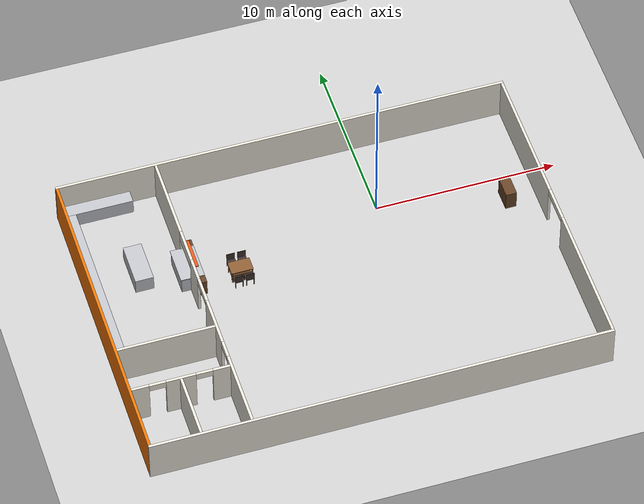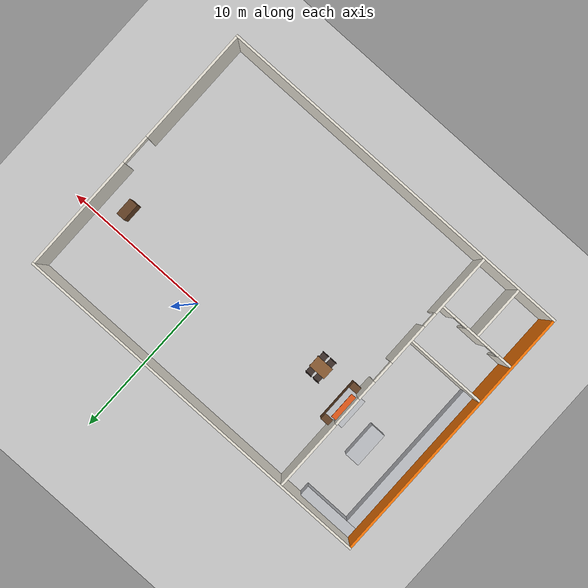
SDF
<sdf version="1.6">
 <world name="restaurant">
  <model name="ground_plane">
   <static>1</static>
   <link name="link">
    <collision name="collision">
     <geometry><plane><normal>0 0 1</normal><size>100 100</size></plane></geometry>
     <surface><friction><ode><mu>100</mu><mu2>50</mu2></ode></friction></surface>
    </collision>
    <visual name="visual">
     <cast_shadows>0</cast_shadows>
     <geometry><plane><normal>0 0 1</normal><size>100 100</size></plane></geometry>
     <material>
      <script><uri>file://media/materials/scripts/gazebo.material</uri><name>Gazebo/Grey</name></script>
     </material>
    </visual>
   </link>
  </model>
  <model name="restaurant">
   <static>true</static>
   <pose>-3.936 -4.4909 0 0 0 0</pose>
   <link name="Wall_8">
    <collision name="Wall_8_n_collision">
     <pose>0.0000 8.9250 1.2500 0 0 0</pose>
     <geometry><box><size>25.0000 0.1500 2.5000</size></box></geometry>
    </collision>
    <visual name="Wall_8_n_visual">
     <pose>0.0000 8.9250 1.2500 0 0 0</pose>
     <geometry><box><size>25.0000 0.1500 2.5000</size></box></geometry>
     <material>
      <ambient>0.93 0.91 0.86 1</ambient>
      <diffuse>0.93 0.91 0.86 1</diffuse>
      <specular>0.05 0.05 0.05 1</specular>
     </material>
    </visual>
   </link>
   <link name="Wall_12">
    <collision name="Wall_12_s_collision">
     <pose>0.0000 -8.9250 1.2500 0 0 0</pose>
     <geometry><box><size>25.0000 0.1500 2.5000</size></box></geometry>
    </collision>
    <visual name="Wall_12_s_visual">
     <pose>0.0000 -8.9250 1.2500 0 0 0</pose>
     <geometry><box><size>25.0000 0.1500 2.5000</size></box></geometry>
     <material>
      <ambient>0.93 0.91 0.86 1</ambient>
      <diffuse>0.93 0.91 0.86 1</diffuse>
      <specular>0.05 0.05 0.05 1</specular>
     </material>
    </visual>
   </link>
   <link name="Wall_10">
    <collision name="Wall_10_w_collision">
     <pose>-12.4250 0.0000 1.2500 0 0 0</pose>
     <geometry><box><size>0.1500 17.7000 2.5000</size></box></geometry>
    </collision>
    <visual name="Wall_10_w_visual">
     <pose>-12.4250 0.0000 1.2500 0 0 0</pose>
     <geometry><box><size>0.1500 17.7000 2.5000</size></box></geometry>
     <material>
      <ambient>0.996078 0.47451 0.0196078 1</ambient>
      <diffuse>0.996078 0.47451 0.0196078 1</diffuse>
      <specular>0.05 0.05 0.05 1</specular>
     </material>
    </visual>
   </link>
   <link name="Wall_14">
    <collision name="Wall_14_a_collision">
     <pose>12.4250 -4.9250 1.2500 0 0 0</pose>
     <geometry><box><size>0.1500 7.8500 2.5000</size></box></geometry>
    </collision>
    <visual name="Wall_14_a_visual">
     <pose>12.4250 -4.9250 1.2500 0 0 0</pose>
     <geometry><box><size>0.1500 7.8500 2.5000</size></box></geometry>
     <material>
      <ambient>0.93 0.91 0.86 1</ambient>
      <diffuse>0.93 0.91 0.86 1</diffuse>
      <specular>0.05 0.05 0.05 1</specular>
     </material>
    </visual>
    <collision name="Wall_14_b_collision">
     <pose>12.4250 4.9250 1.2500 0 0 0</pose>
     <geometry><box><size>0.1500 7.8500 2.5000</size></box></geometry>
    </collision>
    <visual name="Wall_14_b_visual">
     <pose>12.4250 4.9250 1.2500 0 0 0</pose>
     <geometry><box><size>0.1500 7.8500 2.5000</size></box></geometry>
     <material>
      <ambient>0.93 0.91 0.86 1</ambient>
      <diffuse>0.93 0.91 0.86 1</diffuse>
      <specular>0.05 0.05 0.05 1</specular>
     </material>
    </visual>
    <collision name="Wall_14_lintel_collision">
     <pose>12.4250 0.0000 2.3000 0 0 0</pose>
     <geometry><box><size>0.1500 2.0000 0.4000</size></box></geometry>
    </collision>
    <visual name="Wall_14_lintel_visual">
     <pose>12.4250 0.0000 2.3000 0 0 0</pose>
     <geometry><box><size>0.1500 2.0000 0.4000</size></box></geometry>
     <material>
      <ambient>0.93 0.91 0.86 1</ambient>
      <diffuse>0.93 0.91 0.86 1</diffuse>
      <specular>0.05 0.05 0.05 1</specular>
     </material>
    </visual>
   </link>
   <link name="Partition_Kitchen">
    <collision name="Partition_Kitchen_a_collision">
     <pose>-7.0000 -6.7250 1.2500 0 0 0</pose>
     <geometry><box><size>0.1500 4.2500 2.5000</size></box></geometry>
    </collision>
    <visual name="Partition_Kitchen_a_visual">
     <pose>-7.0000 -6.7250 1.2500 0 0 0</pose>
     <geometry><box><size>0.1500 4.2500 2.5000</size></box></geometry>
     <material>
      <ambient>0.93 0.91 0.86 1</ambient>
      <diffuse>0.93 0.91 0.86 1</diffuse>
      <specular>0.05 0.05 0.05 1</specular>
     </material>
    </visual>
    <collision name="Partition_Kitchen_b_collision">
     <pose>-7.0000 -2.1750 1.2500 0 0 0</pose>
     <geometry><box><size>0.1500 2.8500 2.5000</size></box></geometry>
    </collision>
    <visual name="Partition_Kitchen_b_visual">
     <pose>-7.0000 -2.1750 1.2500 0 0 0</pose>
     <geometry><box><size>0.1500 2.8500 2.5000</size></box></geometry>
     <material>
      <ambient>0.93 0.91 0.86 1</ambient>
      <diffuse>0.93 0.91 0.86 1</diffuse>
      <specular>0.05 0.05 0.05 1</specular>
     </material>
    </visual>
    <collision name="Partition_Kitchen_c1_collision">
     <pose>-7.0000 1.4250 1.2500 0 0 0</pose>
     <geometry><box><size>0.1500 1.3500 2.5000</size></box></geometry>
    </collision>
    <visual name="Partition_Kitchen_c1_visual">
     <pose>-7.0000 1.4250 1.2500 0 0 0</pose>
     <geometry><box><size>0.1500 1.3500 2.5000</size></box></geometry>
     <material>
      <ambient>0.93 0.91 0.86 1</ambient>
      <diffuse>0.93 0.91 0.86 1</diffuse>
      <specular>0.05 0.05 0.05 1</specular>
     </material>
    </visual>
    <collision name="Partition_Kitchen_c2_collision">
     <pose>-7.0000 6.4750 1.2500 0 0 0</pose>
     <geometry><box><size>0.1500 4.7500 2.5000</size></box></geometry>
    </collision>
    <visual name="Partition_Kitchen_c2_visual">
     <pose>-7.0000 6.4750 1.2500 0 0 0</pose>
     <geometry><box><size>0.1500 4.7500 2.5000</size></box></geometry>
     <material>
      <ambient>0.93 0.91 0.86 1</ambient>
      <diffuse>0.93 0.91 0.86 1</diffuse>
      <specular>0.05 0.05 0.05 1</specular>
     </material>
    </visual>
    <collision name="Partition_Kitchen_window_sill_collision">
     <pose>-7.0000 3.1000 0.5000 0 0 0</pose>
     <geometry><box><size>0.1500 2.0000 1.0000</size></box></geometry>
    </collision>
    <visual name="Partition_Kitchen_window_sill_visual">
     <pose>-7.0000 3.1000 0.5000 0 0 0</pose>
     <geometry><box><size>0.1500 2.0000 1.0000</size></box></geometry>
     <material>
      <ambient>0.93 0.91 0.86 1</ambient>
      <diffuse>0.93 0.91 0.86 1</diffuse>
      <specular>0.05 0.05 0.05 1</specular>
     </material>
    </visual>
    <collision name="Partition_Kitchen_window_header_collision">
     <pose>-7.0000 3.1000 2.1500 0 0 0</pose>
     <geometry><box><size>0.1500 2.0000 0.7000</size></box></geometry>
    </collision>
    <visual name="Partition_Kitchen_window_header_visual">
     <pose>-7.0000 3.1000 2.1500 0 0 0</pose>
     <geometry><box><size>0.1500 2.0000 0.7000</size></box></geometry>
     <material>
      <ambient>0.93 0.91 0.86 1</ambient>
      <diffuse>0.93 0.91 0.86 1</diffuse>
      <specular>0.05 0.05 0.05 1</specular>
     </material>
    </visual>
    <collision name="Partition_Kitchen_lintel_kitchen_collision">
     <pose>-7.0000 0.0000 2.3000 0 0 0</pose>
     <geometry><box><size>0.1500 1.5000 0.4000</size></box></geometry>
    </collision>
    <visual name="Partition_Kitchen_lintel_kitchen_visual">
     <pose>-7.0000 0.0000 2.3000 0 0 0</pose>
     <geometry><box><size>0.1500 1.5000 0.4000</size></box></geometry>
     <material>
      <ambient>0.93 0.91 0.86 1</ambient>
      <diffuse>0.93 0.91 0.86 1</diffuse>
      <specular>0.05 0.05 0.05 1</specular>
     </material>
    </visual>
    <collision name="Partition_Kitchen_lintel_wc_collision">
     <pose>-7.0000 -4.1000 2.3000 0 0 0</pose>
     <geometry><box><size>0.1500 1.0000 0.4000</size></box></geometry>
    </collision>
    <visual name="Partition_Kitchen_lintel_wc_visual">
     <pose>-7.0000 -4.1000 2.3000 0 0 0</pose>
     <geometry><box><size>0.1500 1.0000 0.4000</size></box></geometry>
     <material>
      <ambient>0.93 0.91 0.86 1</ambient>
      <diffuse>0.93 0.91 0.86 1</diffuse>
      <specular>0.05 0.05 0.05 1</specular>
     </material>
    </visual>
   </link>
   <link name="Wall_Kitchen_South">
    <collision name="Wall_Kitchen_South_w_collision">
     <pose>-9.7125 -2.5000 1.2500 0 0 0</pose>
     <geometry><box><size>5.2750 0.1500 2.5000</size></box></geometry>
    </collision>
    <visual name="Wall_Kitchen_South_w_visual">
     <pose>-9.7125 -2.5000 1.2500 0 0 0</pose>
     <geometry><box><size>5.2750 0.1500 2.5000</size></box></geometry>
     <material>
      <ambient>0.93 0.91 0.86 1</ambient>
      <diffuse>0.93 0.91 0.86 1</diffuse>
      <specular>0.05 0.05 0.05 1</specular>
     </material>
    </visual>
   </link>
   <link name="Wall_Restrooms">
    <collision name="Wall_Restrooms_a_collision">
     <pose>-11.8750 -5.2000 1.2500 0 0 0</pose>
     <geometry><box><size>0.9500 0.1500 2.5000</size></box></geometry>
    </collision>
    <visual name="Wall_Restrooms_a_visual">
     <pose>-11.8750 -5.2000 1.2500 0 0 0</pose>
     <geometry><box><size>0.9500 0.1500 2.5000</size></box></geometry>
     <material>
      <ambient>0.93 0.91 0.86 1</ambient>
      <diffuse>0.93 0.91 0.86 1</diffuse>
      <specular>0.05 0.05 0.05 1</specular>
     </material>
    </visual>
    <collision name="Wall_Restrooms_b_collision">
     <pose>-9.7000 -5.2000 1.2500 0 0 0</pose>
     <geometry><box><size>1.6000 0.1500 2.5000</size></box></geometry>
    </collision>
    <visual name="Wall_Restrooms_b_visual">
     <pose>-9.7000 -5.2000 1.2500 0 0 0</pose>
     <geometry><box><size>1.6000 0.1500 2.5000</size></box></geometry>
     <material>
      <ambient>0.93 0.91 0.86 1</ambient>
      <diffuse>0.93 0.91 0.86 1</diffuse>
      <specular>0.05 0.05 0.05 1</specular>
     </material>
    </visual>
    <collision name="Wall_Restrooms_c_collision">
     <pose>-7.5375 -5.2000 1.2500 0 0 0</pose>
     <geometry><box><size>0.9250 0.1500 2.5000</size></box></geometry>
    </collision>
    <visual name="Wall_Restrooms_c_visual">
     <pose>-7.5375 -5.2000 1.2500 0 0 0</pose>
     <geometry><box><size>0.9250 0.1500 2.5000</size></box></geometry>
     <material>
      <ambient>0.93 0.91 0.86 1</ambient>
      <diffuse>0.93 0.91 0.86 1</diffuse>
      <specular>0.05 0.05 0.05 1</specular>
     </material>
    </visual>
    <collision name="Wall_Restrooms_lintel1_collision">
     <pose>-10.9500 -5.2000 2.3000 0 0 0</pose>
     <geometry><box><size>0.9000 0.1500 0.4000</size></box></geometry>
    </collision>
    <visual name="Wall_Restrooms_lintel1_visual">
     <pose>-10.9500 -5.2000 2.3000 0 0 0</pose>
     <geometry><box><size>0.9000 0.1500 0.4000</size></box></geometry>
     <material>
      <ambient>0.93 0.91 0.86 1</ambient>
      <diffuse>0.93 0.91 0.86 1</diffuse>
      <specular>0.05 0.05 0.05 1</specular>
     </material>
    </visual>
    <collision name="Wall_Restrooms_lintel2_collision">
     <pose>-8.4500 -5.2000 2.3000 0 0 0</pose>
     <geometry><box><size>0.9000 0.1500 0.4000</size></box></geometry>
    </collision>
    <visual name="Wall_Restrooms_lintel2_visual">
     <pose>-8.4500 -5.2000 2.3000 0 0 0</pose>
     <geometry><box><size>0.9000 0.1500 0.4000</size></box></geometry>
     <material>
      <ambient>0.93 0.91 0.86 1</ambient>
      <diffuse>0.93 0.91 0.86 1</diffuse>
      <specular>0.05 0.05 0.05 1</specular>
     </material>
    </visual>
   </link>
   <link name="Wall_Restroom_Divider">
    <collision name="Wall_Restroom_Divider_w_collision">
     <pose>-9.7000 -7.0625 1.2500 0 0 0</pose>
     <geometry><box><size>0.1500 3.5750 2.5000</size></box></geometry>
    </collision>
    <visual name="Wall_Restroom_Divider_w_visual">
     <pose>-9.7000 -7.0625 1.2500 0 0 0</pose>
     <geometry><box><size>0.1500 3.5750 2.5000</size></box></geometry>
     <material>
      <ambient>0.93 0.91 0.86 1</ambient>
      <diffuse>0.93 0.91 0.86 1</diffuse>
      <specular>0.05 0.05 0.05 1</specular>
     </material>
    </visual>
   </link>
   <link name="Kitchen_Counter_West">
    <collision name="Kitchen_Counter_West_c_collision">
     <pose>-12.0000 2.8625 0.4500 0 0 0</pose>
     <geometry><box><size>0.7000 10.5750 0.9000</size></box></geometry>
    </collision>
    <visual name="Kitchen_Counter_West_c_visual">
     <pose>-12.0000 2.8625 0.4500 0 0 0</pose>
     <geometry><box><size>0.7000 10.5750 0.9000</size></box></geometry>
     <material>
      <ambient>0.75 0.76 0.78 1</ambient>
      <diffuse>0.75 0.76 0.78 1</diffuse>
      <specular>0.05 0.05 0.05 1</specular>
     </material>
    </visual>
   </link>
   <link name="Kitchen_Counter_North">
    <collision name="Kitchen_Counter_North_c_collision">
     <pose>-10.4250 8.5000 0.4500 0 0 0</pose>
     <geometry><box><size>3.8500 0.7000 0.9000</size></box></geometry>
    </collision>
    <visual name="Kitchen_Counter_North_c_visual">
     <pose>-10.4250 8.5000 0.4500 0 0 0</pose>
     <geometry><box><size>3.8500 0.7000 0.9000</size></box></geometry>
     <material>
      <ambient>0.75 0.76 0.78 1</ambient>
      <diffuse>0.75 0.76 0.78 1</diffuse>
      <specular>0.05 0.05 0.05 1</specular>
     </material>
    </visual>
   </link>
   <link name="Kitchen_Island">
    <collision name="Kitchen_Island_c_collision">
     <pose>-9.4000 4.0000 0.4500 0 0 0</pose>
     <geometry><box><size>1.0000 2.4000 0.9000</size></box></geometry>
    </collision>
    <visual name="Kitchen_Island_c_visual">
     <pose>-9.4000 4.0000 0.4500 0 0 0</pose>
     <geometry><box><size>1.0000 2.4000 0.9000</size></box></geometry>
     <material>
      <ambient>0.75 0.76 0.78 1</ambient>
      <diffuse>0.75 0.76 0.78 1</diffuse>
      <specular>0.05 0.05 0.05 1</specular>
     </material>
    </visual>
   </link>
   <link name="Pickup_Counter">
    <collision name="Pickup_Counter_c_collision">
     <pose>-6.6250 3.1000 0.5000 0 0 0</pose>
     <geometry><box><size>0.6000 3.0000 1.0000</size></box></geometry>
    </collision>
    <visual name="Pickup_Counter_c_visual">
     <pose>-6.6250 3.1000 0.5000 0 0 0</pose>
     <geometry><box><size>0.6000 3.0000 1.0000</size></box></geometry>
     <material>
      <ambient>0.4 0.26 0.15 1</ambient>
      <diffuse>0.4 0.26 0.15 1</diffuse>
      <specular>0.05 0.05 0.05 1</specular>
     </material>
    </visual>
   </link>
   <link name="Kitchen_Pass_Counter">
    <collision name="Kitchen_Pass_Counter_c_collision">
     <pose>-7.3250 3.1000 0.5000 0 0 0</pose>
     <geometry><box><size>0.5000 2.0000 1.0000</size></box></geometry>
    </collision>
    <visual name="Kitchen_Pass_Counter_c_visual">
     <pose>-7.3250 3.1000 0.5000 0 0 0</pose>
     <geometry><box><size>0.5000 2.0000 1.0000</size></box></geometry>
     <material>
      <ambient>0.75 0.76 0.78 1</ambient>
      <diffuse>0.75 0.76 0.78 1</diffuse>
      <specular>0.05 0.05 0.05 1</specular>
     </material>
    </visual>
   </link>
   <link name="Pass_Shelf">
    <collision name="Pass_Shelf_c_collision">
     <pose>-6.9750 3.1000 1.0150 0 0 0</pose>
     <geometry><box><size>1.3000 2.1000 0.0300</size></box></geometry>
    </collision>
    <visual name="Pass_Shelf_c_visual">
     <pose>-6.9750 3.1000 1.0150 0 0 0</pose>
     <geometry><box><size>1.3000 2.1000 0.0300</size></box></geometry>
     <material>
      <ambient>0.75 0.76 0.78 1</ambient>
      <diffuse>0.75 0.76 0.78 1</diffuse>
      <specular>0.05 0.05 0.05 1</specular>
     </material>
    </visual>
   </link>
   <link name="Heat_Lamp">
    <collision name="Heat_Lamp_c_collision">
     <pose>-6.8000 3.1000 1.6850 0 0 0</pose>
     <geometry><box><size>0.4000 1.8000 0.0700</size></box></geometry>
    </collision>
    <visual name="Heat_Lamp_c_visual">
     <pose>-6.8000 3.1000 1.6850 0 0 0</pose>
     <geometry><box><size>0.4000 1.8000 0.0700</size></box></geometry>
     <material>
      <ambient>0.9 0.35 0.1 1</ambient>
      <diffuse>0.9 0.35 0.1 1</diffuse>
      <specular>0.05 0.05 0.05 1</specular>
     </material>
    </visual>
   </link>
   <link name="Host_Stand">
    <collision name="Host_Stand_c_collision">
     <pose>10.8000 3.0000 0.5500 0 0 0</pose>
     <geometry><box><size>0.6000 1.2000 1.1000</size></box></geometry>
    </collision>
    <visual name="Host_Stand_c_visual">
     <pose>10.8000 3.0000 0.5500 0 0 0</pose>
     <geometry><box><size>0.6000 1.2000 1.1000</size></box></geometry>
     <material>
      <ambient>0.4 0.26 0.15 1</ambient>
      <diffuse>0.4 0.26 0.15 1</diffuse>
      <specular>0.05 0.05 0.05 1</specular>
     </material>
    </visual>
   </link>
  </model>
  <model name="table_6">
   <static>true</static>
   <pose>-8.2360 -2.1909 0 0 0 0</pose>
   <link name="link">
    <collision name="base_collision">
     <pose>0.0000 0.0000 0.2000 0 0 0</pose>
     <geometry><box><size>1.0000 0.6000 0.4000</size></box></geometry>
    </collision>
    <visual name="base_visual">
     <pose>0.0000 0.0000 0.2000 0 0 0</pose>
     <geometry><box><size>1.0000 0.6000 0.4000</size></box></geometry>
     <material>
      <ambient>0.35 0.22 0.12 1</ambient>
      <diffuse>0.35 0.22 0.12 1</diffuse>
      <specular>0.05 0.05 0.05 1</specular>
     </material>
    </visual>
    <collision name="top_collision">
     <pose>0.0000 0.0000 0.7300 0 0 0</pose>
     <geometry><box><size>1.2000 0.8000 0.0400</size></box></geometry>
    </collision>
    <visual name="top_visual">
     <pose>0.0000 0.0000 0.7300 0 0 0</pose>
     <geometry><box><size>1.2000 0.8000 0.0400</size></box></geometry>
     <material>
      <ambient>0.55 0.36 0.2 1</ambient>
      <diffuse>0.55 0.36 0.2 1</diffuse>
      <specular>0.05 0.05 0.05 1</specular>
     </material>
    </visual>
    <collision name="leg0_collision">
     <pose>0.5500 0.3500 0.3550 0 0 0</pose>
     <geometry><box><size>0.0500 0.0500 0.7100</size></box></geometry>
    </collision>
    <visual name="leg0_visual">
     <pose>0.5500 0.3500 0.3550 0 0 0</pose>
     <geometry><box><size>0.0500 0.0500 0.7100</size></box></geometry>
     <material>
      <ambient>0.55 0.36 0.2 1</ambient>
      <diffuse>0.55 0.36 0.2 1</diffuse>
      <specular>0.05 0.05 0.05 1</specular>
     </material>
    </visual>
    <collision name="leg1_collision">
     <pose>0.5500 -0.3500 0.3550 0 0 0</pose>
     <geometry><box><size>0.0500 0.0500 0.7100</size></box></geometry>
    </collision>
    <visual name="leg1_visual">
     <pose>0.5500 -0.3500 0.3550 0 0 0</pose>
     <geometry><box><size>0.0500 0.0500 0.7100</size></box></geometry>
     <material>
      <ambient>0.55 0.36 0.2 1</ambient>
      <diffuse>0.55 0.36 0.2 1</diffuse>
      <specular>0.05 0.05 0.05 1</specular>
     </material>
    </visual>
    <collision name="leg2_collision">
     <pose>-0.5500 0.3500 0.3550 0 0 0</pose>
     <geometry><box><size>0.0500 0.0500 0.7100</size></box></geometry>
    </collision>
    <visual name="leg2_visual">
     <pose>-0.5500 0.3500 0.3550 0 0 0</pose>
     <geometry><box><size>0.0500 0.0500 0.7100</size></box></geometry>
     <material>
      <ambient>0.55 0.36 0.2 1</ambient>
      <diffuse>0.55 0.36 0.2 1</diffuse>
      <specular>0.05 0.05 0.05 1</specular>
     </material>
    </visual>
    <collision name="leg3_collision">
     <pose>-0.5500 -0.3500 0.3550 0 0 0</pose>
     <geometry><box><size>0.0500 0.0500 0.7100</size></box></geometry>
    </collision>
    <visual name="leg3_visual">
     <pose>-0.5500 -0.3500 0.3550 0 0 0</pose>
     <geometry><box><size>0.0500 0.0500 0.7100</size></box></geometry>
     <material>
      <ambient>0.55 0.36 0.2 1</ambient>
      <diffuse>0.55 0.36 0.2 1</diffuse>
      <specular>0.05 0.05 0.05 1</specular>
     </material>
    </visual>
    <collision name="chair0_seat_collision">
     <pose>-0.3000 0.6000 0.4500 0 0 0</pose>
     <geometry><box><size>0.4500 0.4500 0.0400</size></box></geometry>
    </collision>
    <visual name="chair0_seat_visual">
     <pose>-0.3000 0.6000 0.4500 0 0 0</pose>
     <geometry><box><size>0.4500 0.4500 0.0400</size></box></geometry>
     <material>
      <ambient>0.25 0.2 0.18 1</ambient>
      <diffuse>0.25 0.2 0.18 1</diffuse>
      <specular>0.05 0.05 0.05 1</specular>
     </material>
    </visual>
    <collision name="chair0_leg0_collision">
     <pose>-0.1000 0.8000 0.2150 0 0 0</pose>
     <geometry><box><size>0.0400 0.0400 0.4300</size></box></geometry>
    </collision>
    <visual name="chair0_leg0_visual">
     <pose>-0.1000 0.8000 0.2150 0 0 0</pose>
     <geometry><box><size>0.0400 0.0400 0.4300</size></box></geometry>
     <material>
      <ambient>0.25 0.2 0.18 1</ambient>
      <diffuse>0.25 0.2 0.18 1</diffuse>
      <specular>0.05 0.05 0.05 1</specular>
     </material>
    </visual>
    <collision name="chair0_leg1_collision">
     <pose>-0.1000 0.4000 0.2150 0 0 0</pose>
     <geometry><box><size>0.0400 0.0400 0.4300</size></box></geometry>
    </collision>
    <visual name="chair0_leg1_visual">
     <pose>-0.1000 0.4000 0.2150 0 0 0</pose>
     <geometry><box><size>0.0400 0.0400 0.4300</size></box></geometry>
     <material>
      <ambient>0.25 0.2 0.18 1</ambient>
      <diffuse>0.25 0.2 0.18 1</diffuse>
      <specular>0.05 0.05 0.05 1</specular>
     </material>
    </visual>
    <collision name="chair0_leg2_collision">
     <pose>-0.5000 0.8000 0.2150 0 0 0</pose>
     <geometry><box><size>0.0400 0.0400 0.4300</size></box></geometry>
    </collision>
    <visual name="chair0_leg2_visual">
     <pose>-0.5000 0.8000 0.2150 0 0 0</pose>
     <geometry><box><size>0.0400 0.0400 0.4300</size></box></geometry>
     <material>
      <ambient>0.25 0.2 0.18 1</ambient>
      <diffuse>0.25 0.2 0.18 1</diffuse>
      <specular>0.05 0.05 0.05 1</specular>
     </material>
    </visual>
    <collision name="chair0_leg3_collision">
     <pose>-0.5000 0.4000 0.2150 0 0 0</pose>
     <geometry><box><size>0.0400 0.0400 0.4300</size></box></geometry>
    </collision>
    <visual name="chair0_leg3_visual">
     <pose>-0.5000 0.4000 0.2150 0 0 0</pose>
     <geometry><box><size>0.0400 0.0400 0.4300</size></box></geometry>
     <material>
      <ambient>0.25 0.2 0.18 1</ambient>
      <diffuse>0.25 0.2 0.18 1</diffuse>
      <specular>0.05 0.05 0.05 1</specular>
     </material>
    </visual>
    <collision name="chair0_back_collision">
     <pose>-0.3000 0.8050 0.6850 0 0 0</pose>
     <geometry><box><size>0.4500 0.0400 0.4300</size></box></geometry>
    </collision>
    <visual name="chair0_back_visual">
     <pose>-0.3000 0.8050 0.6850 0 0 0</pose>
     <geometry><box><size>0.4500 0.0400 0.4300</size></box></geometry>
     <material>
      <ambient>0.25 0.2 0.18 1</ambient>
      <diffuse>0.25 0.2 0.18 1</diffuse>
      <specular>0.05 0.05 0.05 1</specular>
     </material>
    </visual>
    <collision name="chair1_seat_collision">
     <pose>-0.3000 -0.6000 0.4500 0 0 0</pose>
     <geometry><box><size>0.4500 0.4500 0.0400</size></box></geometry>
    </collision>
    <visual name="chair1_seat_visual">
     <pose>-0.3000 -0.6000 0.4500 0 0 0</pose>
     <geometry><box><size>0.4500 0.4500 0.0400</size></box></geometry>
     <material>
      <ambient>0.25 0.2 0.18 1</ambient>
      <diffuse>0.25 0.2 0.18 1</diffuse>
      <specular>0.05 0.05 0.05 1</specular>
     </material>
    </visual>
    <collision name="chair1_leg0_collision">
     <pose>-0.1000 -0.4000 0.2150 0 0 0</pose>
     <geometry><box><size>0.0400 0.0400 0.4300</size></box></geometry>
    </collision>
    <visual name="chair1_leg0_visual">
     <pose>-0.1000 -0.4000 0.2150 0 0 0</pose>
     <geometry><box><size>0.0400 0.0400 0.4300</size></box></geometry>
     <material>
      <ambient>0.25 0.2 0.18 1</ambient>
      <diffuse>0.25 0.2 0.18 1</diffuse>
      <specular>0.05 0.05 0.05 1</specular>
     </material>
    </visual>
    <collision name="chair1_leg1_collision">
     <pose>-0.1000 -0.8000 0.2150 0 0 0</pose>
     <geometry><box><size>0.0400 0.0400 0.4300</size></box></geometry>
    </collision>
    <visual name="chair1_leg1_visual">
     <pose>-0.1000 -0.8000 0.2150 0 0 0</pose>
     <geometry><box><size>0.0400 0.0400 0.4300</size></box></geometry>
     <material>
      <ambient>0.25 0.2 0.18 1</ambient>
      <diffuse>0.25 0.2 0.18 1</diffuse>
      <specular>0.05 0.05 0.05 1</specular>
     </material>
    </visual>
    <collision name="chair1_leg2_collision">
     <pose>-0.5000 -0.4000 0.2150 0 0 0</pose>
     <geometry><box><size>0.0400 0.0400 0.4300</size></box></geometry>
    </collision>
    <visual name="chair1_leg2_visual">
     <pose>-0.5000 -0.4000 0.2150 0 0 0</pose>
     <geometry><box><size>0.0400 0.0400 0.4300</size></box></geometry>
     <material>
      <ambient>0.25 0.2 0.18 1</ambient>
      <diffuse>0.25 0.2 0.18 1</diffuse>
      <specular>0.05 0.05 0.05 1</specular>
     </material>
    </visual>
    <collision name="chair1_leg3_collision">
     <pose>-0.5000 -0.8000 0.2150 0 0 0</pose>
     <geometry><box><size>0.0400 0.0400 0.4300</size></box></geometry>
    </collision>
    <visual name="chair1_leg3_visual">
     <pose>-0.5000 -0.8000 0.2150 0 0 0</pose>
     <geometry><box><size>0.0400 0.0400 0.4300</size></box></geometry>
     <material>
      <ambient>0.25 0.2 0.18 1</ambient>
      <diffuse>0.25 0.2 0.18 1</diffuse>
      <specular>0.05 0.05 0.05 1</specular>
     </material>
    </visual>
    <collision name="chair1_back_collision">
     <pose>-0.3000 -0.8050 0.6850 0 0 0</pose>
     <geometry><box><size>0.4500 0.0400 0.4300</size></box></geometry>
    </collision>
    <visual name="chair1_back_visual">
     <pose>-0.3000 -0.8050 0.6850 0 0 0</pose>
     <geometry><box><size>0.4500 0.0400 0.4300</size></box></geometry>
     <material>
      <ambient>0.25 0.2 0.18 1</ambient>
      <diffuse>0.25 0.2 0.18 1</diffuse>
      <specular>0.05 0.05 0.05 1</specular>
     </material>
    </visual>
    <collision name="chair2_seat_collision">
     <pose>0.3000 0.6000 0.4500 0 0 0</pose>
     <geometry><box><size>0.4500 0.4500 0.0400</size></box></geometry>
    </collision>
    <visual name="chair2_seat_visual">
     <pose>0.3000 0.6000 0.4500 0 0 0</pose>
     <geometry><box><size>0.4500 0.4500 0.0400</size></box></geometry>
     <material>
      <ambient>0.25 0.2 0.18 1</ambient>
      <diffuse>0.25 0.2 0.18 1</diffuse>
      <specular>0.05 0.05 0.05 1</specular>
     </material>
    </visual>
    <collision name="chair2_leg0_collision">
     <pose>0.5000 0.8000 0.2150 0 0 0</pose>
     <geometry><box><size>0.0400 0.0400 0.4300</size></box></geometry>
    </collision>
    <visual name="chair2_leg0_visual">
     <pose>0.5000 0.8000 0.2150 0 0 0</pose>
     <geometry><box><size>0.0400 0.0400 0.4300</size></box></geometry>
     <material>
      <ambient>0.25 0.2 0.18 1</ambient>
      <diffuse>0.25 0.2 0.18 1</diffuse>
      <specular>0.05 0.05 0.05 1</specular>
     </material>
    </visual>
    <collision name="chair2_leg1_collision">
     <pose>0.5000 0.4000 0.2150 0 0 0</pose>
     <geometry><box><size>0.0400 0.0400 0.4300</size></box></geometry>
    </collision>
    <visual name="chair2_leg1_visual">
     <pose>0.5000 0.4000 0.2150 0 0 0</pose>
     <geometry><box><size>0.0400 0.0400 0.4300</size></box></geometry>
     <material>
      <ambient>0.25 0.2 0.18 1</ambient>
      <diffuse>0.25 0.2 0.18 1</diffuse>
      <specular>0.05 0.05 0.05 1</specular>
     </material>
    </visual>
    <collision name="chair2_leg2_collision">
     <pose>0.1000 0.8000 0.2150 0 0 0</pose>
     <geometry><box><size>0.0400 0.0400 0.4300</size></box></geometry>
    </collision>
    <visual name="chair2_leg2_visual">
     <pose>0.1000 0.8000 0.2150 0 0 0</pose>
     <geometry><box><size>0.0400 0.0400 0.4300</size></box></geometry>
     <material>
      <ambient>0.25 0.2 0.18 1</ambient>
      <diffuse>0.25 0.2 0.18 1</diffuse>
      <specular>0.05 0.05 0.05 1</specular>
     </material>
    </visual>
    <collision name="chair2_leg3_collision">
     <pose>0.1000 0.4000 0.2150 0 0 0</pose>
     <geometry><box><size>0.0400 0.0400 0.4300</size></box></geometry>
    </collision>
    <visual name="chair2_leg3_visual">
     <pose>0.1000 0.4000 0.2150 0 0 0</pose>
     <geometry><box><size>0.0400 0.0400 0.4300</size></box></geometry>
     <material>
      <ambient>0.25 0.2 0.18 1</ambient>
      <diffuse>0.25 0.2 0.18 1</diffuse>
      <specular>0.05 0.05 0.05 1</specular>
     </material>
    </visual>
    <collision name="chair2_back_collision">
     <pose>0.3000 0.8050 0.6850 0 0 0</pose>
     <geometry><box><size>0.4500 0.0400 0.4300</size></box></geometry>
    </collision>
    <visual name="chair2_back_visual">
     <pose>0.3000 0.8050 0.6850 0 0 0</pose>
     <geometry><box><size>0.4500 0.0400 0.4300</size></box></geometry>
     <material>
      <ambient>0.25 0.2 0.18 1</ambient>
      <diffuse>0.25 0.2 0.18 1</diffuse>
      <specular>0.05 0.05 0.05 1</specular>
     </material>
    </visual>
    <collision name="chair3_seat_collision">
     <pose>0.3000 -0.6000 0.4500 0 0 0</pose>
     <geometry><box><size>0.4500 0.4500 0.0400</size></box></geometry>
    </collision>
    <visual name="chair3_seat_visual">
     <pose>0.3000 -0.6000 0.4500 0 0 0</pose>
     <geometry><box><size>0.4500 0.4500 0.0400</size></box></geometry>
     <material>
      <ambient>0.25 0.2 0.18 1</ambient>
      <diffuse>0.25 0.2 0.18 1</diffuse>
      <specular>0.05 0.05 0.05 1</specular>
     </material>
    </visual>
    <collision name="chair3_leg0_collision">
     <pose>0.5000 -0.4000 0.2150 0 0 0</pose>
     <geometry><box><size>0.0400 0.0400 0.4300</size></box></geometry>
    </collision>
    <visual name="chair3_leg0_visual">
     <pose>0.5000 -0.4000 0.2150 0 0 0</pose>
     <geometry><box><size>0.0400 0.0400 0.4300</size></box></geometry>
     <material>
      <ambient>0.25 0.2 0.18 1</ambient>
      <diffuse>0.25 0.2 0.18 1</diffuse>
      <specular>0.05 0.05 0.05 1</specular>
     </material>
    </visual>
    <collision name="chair3_leg1_collision">
     <pose>0.5000 -0.8000 0.2150 0 0 0</pose>
     <geometry><box><size>0.0400 0.0400 0.4300</size></box></geometry>
    </collision>
    <visual name="chair3_leg1_visual">
     <pose>0.5000 -0.8000 0.2150 0 0 0</pose>
     <geometry><box><size>0.0400 0.0400 0.4300</size></box></geometry>
     <material>
      <ambient>0.25 0.2 0.18 1</ambient>
      <diffuse>0.25 0.2 0.18 1</diffuse>
      <specular>0.05 0.05 0.05 1</specular>
     </material>
    </visual>
    <collision name="chair3_leg2_collision">
     <pose>0.1000 -0.4000 0.2150 0 0 0</pose>
     <geometry><box><size>0.0400 0.0400 0.4300</size></box></geometry>
    </collision>
    <visual name="chair3_leg2_visual">
     <pose>0.1000 -0.4000 0.2150 0 0 0</pose>
     <geometry><box><size>0.0400 0.0400 0.4300</size></box></geometry>
     <material>
      <ambient>0.25 0.2 0.18 1</ambient>
      <diffuse>0.25 0.2 0.18 1</diffuse>
      <specular>0.05 0.05 0.05 1</specular>
     </material>
    </visual>
    <collision name="chair3_leg3_collision">
     <pose>0.1000 -0.8000 0.2150 0 0 0</pose>
     <geometry><box><size>0.0400 0.0400 0.4300</size></box></geometry>
    </collision>
    <visual name="chair3_leg3_visual">
     <pose>0.1000 -0.8000 0.2150 0 0 0</pose>
     <geometry><box><size>0.0400 0.0400 0.4300</size></box></geometry>
     <material>
      <ambient>0.25 0.2 0.18 1</ambient>
      <diffuse>0.25 0.2 0.18 1</diffuse>
      <specular>0.05 0.05 0.05 1</specular>
     </material>
    </visual>
    <collision name="chair3_back_collision">
     <pose>0.3000 -0.8050 0.6850 0 0 0</pose>
     <geometry><box><size>0.4500 0.0400 0.4300</size></box></geometry>
    </collision>
    <visual name="chair3_back_visual">
     <pose>0.3000 -0.8050 0.6850 0 0 0</pose>
     <geometry><box><size>0.4500 0.0400 0.4300</size></box></geometry>
     <material>
      <ambient>0.25 0.2 0.18 1</ambient>
      <diffuse>0.25 0.2 0.18 1</diffuse>
      <specular>0.05 0.05 0.05 1</specular>
     </material>
    </visual>
   </link>
  </model>
 </world>
</sdf>
